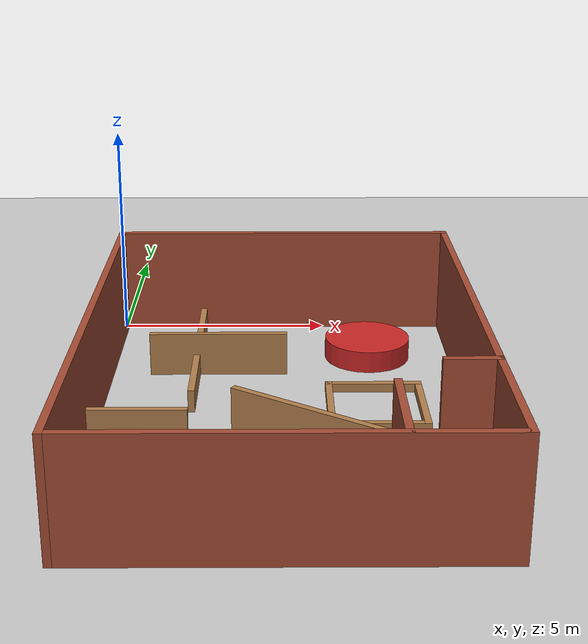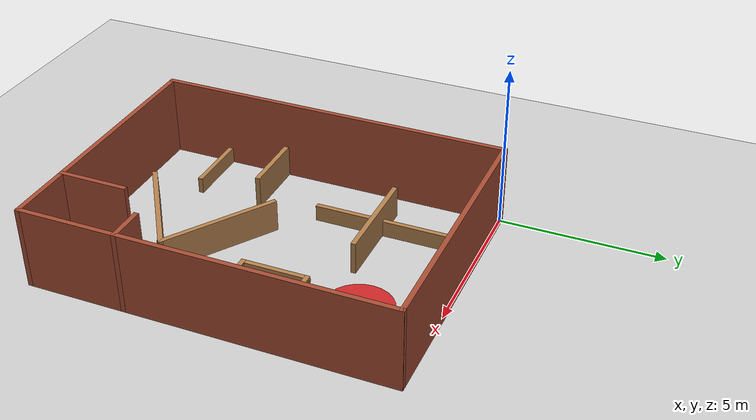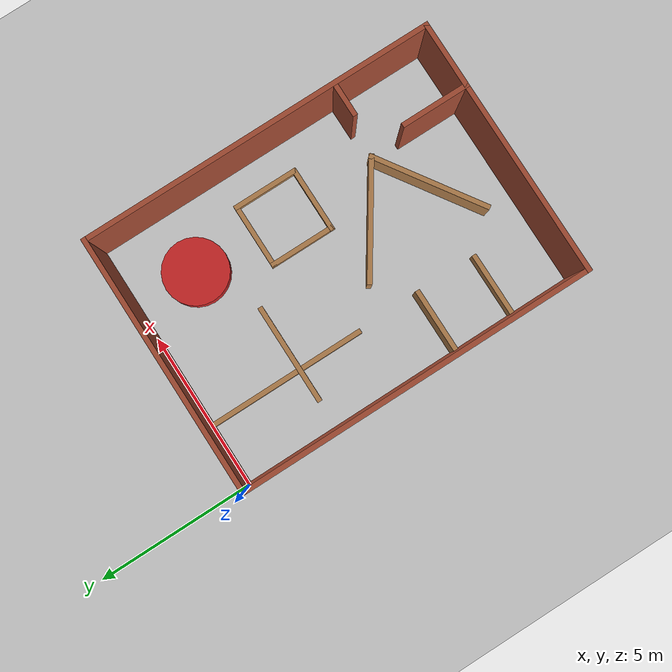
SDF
<sdf version="1.7">
 <world name="default">
  <light name="sun" type="directional">
   <pose>0 0 10 0 -0 0</pose>
   <diffuse>0.8 0.8 0.8 1</diffuse>
   <specular>0.2 0.2 0.2 1</specular>
   <attenuation>
    <range>1000</range>
    <constant>0.9</constant>
    <linear>0.01</linear>
    <quadratic>0.001</quadratic>
   </attenuation>
   <direction>-0.5 0.1 -0.9</direction>
   <spot><inner_angle>0</inner_angle><outer_angle>0</outer_angle><falloff>0</falloff></spot>
  </light>
  <model name="ground_plane">
   <static>1</static>
   <link name="link">
    <collision name="collision">
     <geometry><plane><normal>0 0 1</normal><size>100 100</size></plane></geometry>
     <surface>
      <contact><collide_bitmask>65535</collide_bitmask></contact>
      <friction><ode><mu>100</mu><mu2>50</mu2></ode></friction>
     </surface>
    </collision>
    <visual name="visual">
     <cast_shadows>0</cast_shadows>
     <geometry><plane><normal>0 0 1</normal><size>100 100</size></plane></geometry>
     <material>
      <script><uri>file://media/materials/scripts/gazebo.material</uri><name>Gazebo/Grey</name></script>
     </material>
    </visual>
   </link>
  </model>
  <gravity>0 0 -9.8</gravity>
  <magnetic_field>6e-06 2.3e-05 -4.2e-05</magnetic_field>
  <atmosphere type="adiabatic"/>
  <physics type="ode">
   <max_step_size>0.001</max_step_size>
   <real_time_factor>1</real_time_factor>
   <real_time_update_rate>1000</real_time_update_rate>
  </physics>
  <scene><ambient>0.4 0.4 0.4 1</ambient><background>0.7 0.7 0.7 1</background><shadows>1</shadows></scene>
  <spherical_coordinates>
   <surface_model>EARTH_WGS84</surface_model>
   <latitude_deg>0</latitude_deg>
   <longitude_deg>0</longitude_deg>
   <elevation>0</elevation>
   <heading_deg>0</heading_deg>
  </spherical_coordinates>
  <model name="geometry_map_0">
   <pose>4 -5.5 0 0 -0 0</pose>
   <link name="Wall_25">
    <collision name="Wall_25_Collision">
     <geometry><box><size>8.15 0.15 2.5</size></box></geometry>
     <pose>0 0 1.25 0 -0 0</pose>
    </collision>
    <visual name="Wall_25_Visual">
     <pose>0 0 1.25 0 -0 0</pose>
     <geometry><box><size>8.15 0.15 2.5</size></box></geometry>
     <material>
      <script><uri>file://media/materials/scripts/gazebo.material</uri><name>Gazebo/Bricks</name></script>
      <ambient>1 1 1 1</ambient>
     </material>
     <meta><layer>0</layer></meta>
    </visual>
    <pose>-0 5.5 0 0 -0 0</pose>
   </link>
   <link name="Wall_26">
    <collision name="Wall_26_Collision">
     <geometry><box><size>11.15 0.15 2.5</size></box></geometry>
     <pose>0 0 1.25 0 -0 0</pose>
    </collision>
    <visual name="Wall_26_Visual">
     <pose>0 0 1.25 0 -0 0</pose>
     <geometry><box><size>11.15 0.15 2.5</size></box></geometry>
     <material>
      <script><uri>file://media/materials/scripts/gazebo.material</uri><name>Gazebo/Bricks</name></script>
      <ambient>1 1 1 1</ambient>
     </material>
     <meta><layer>0</layer></meta>
    </visual>
    <pose>4 0 0 0 -0 -1.5708</pose>
   </link>
   <link name="Wall_27">
    <collision name="Wall_27_Collision">
     <geometry><box><size>8.15 0.15 2.5</size></box></geometry>
     <pose>0 0 1.25 0 -0 0</pose>
    </collision>
    <visual name="Wall_27_Visual">
     <pose>0 0 1.25 0 -0 0</pose>
     <geometry><box><size>8.15 0.15 2.5</size></box></geometry>
     <material>
      <script><uri>file://media/materials/scripts/gazebo.material</uri><name>Gazebo/Bricks</name></script>
      <ambient>1 1 1 1</ambient>
     </material>
     <meta><layer>0</layer></meta>
    </visual>
    <pose>-0 -5.5 0 0 -0 3.14159</pose>
   </link>
   <link name="Wall_28">
    <collision name="Wall_28_Collision">
     <geometry><box><size>11.15 0.15 2.5</size></box></geometry>
     <pose>0 0 1.25 0 -0 0</pose>
    </collision>
    <visual name="Wall_28_Visual">
     <pose>0 0 1.25 0 -0 0</pose>
     <geometry><box><size>11.15 0.15 2.5</size></box></geometry>
     <material>
      <script><uri>file://media/materials/scripts/gazebo.material</uri><name>Gazebo/Bricks</name></script>
      <ambient>1 1 1 1</ambient>
     </material>
     <meta><layer>0</layer></meta>
    </visual>
    <pose>-4 0 0 0 -0 1.5708</pose>
   </link>
   <link name="Wall_30">
    <collision name="Wall_30_Collision">
     <geometry><box><size>5.15 0.15 0.5</size></box></geometry>
     <pose>0 0 0.25 0 -0 0</pose>
    </collision>
    <visual name="Wall_30_Visual">
     <pose>0 0 0.25 0 -0 0</pose>
     <geometry><box><size>5.15 0.15 0.5</size></box></geometry>
     <material>
      <script><uri>file://media/materials/scripts/gazebo.material</uri><name>Gazebo/Wood</name></script>
      <ambient>1 1 1 1</ambient>
     </material>
     <meta><layer>0</layer></meta>
    </visual>
    <pose>-2 3 0 0 -0 -1.5708</pose>
   </link>
   <link name="Wall_32">
    <collision name="Wall_32_Collision">
     <geometry><box><size>3.15 0.15 1</size></box></geometry>
     <pose>0 0 0.5 0 -0 0</pose>
    </collision>
    <visual name="Wall_32_Visual">
     <pose>0 0 0.5 0 -0 0</pose>
     <geometry><box><size>3.15 0.15 1</size></box></geometry>
     <material>
      <script><uri>file://media/materials/scripts/gazebo.material</uri><name>Gazebo/Wood</name></script>
      <ambient>1 1 1 1</ambient>
     </material>
     <meta><layer>0</layer></meta>
    </visual>
    <pose>-1.5 2.5 0 0 -0 0</pose>
   </link>
   <link name="Wall_34">
    <collision name="Wall_34_Collision">
     <geometry><box><size>2.15 0.15 0.2</size></box></geometry>
     <pose>0 0 0.1 0 -0 0</pose>
    </collision>
    <visual name="Wall_34_Visual">
     <pose>0 0 0.1 0 -0 0</pose>
     <geometry><box><size>2.15 0.15 0.2</size></box></geometry>
     <material>
      <script><uri>file://media/materials/scripts/gazebo.material</uri><name>Gazebo/Wood</name></script>
      <ambient>1 1 1 1</ambient>
     </material>
     <meta><layer>0</layer></meta>
    </visual>
    <pose>2 1.5 0 0 -0 0</pose>
   </link>
   <link name="Wall_35">
    <collision name="Wall_35_Collision">
     <geometry><box><size>2.15 0.15 0.2</size></box></geometry>
     <pose>0 0 0.1 0 -0 0</pose>
    </collision>
    <visual name="Wall_35_Visual">
     <pose>0 0 0.1 0 -0 0</pose>
     <geometry><box><size>2.15 0.15 0.2</size></box></geometry>
     <material>
      <script><uri>file://media/materials/scripts/gazebo.material</uri><name>Gazebo/Wood</name></script>
      <ambient>1 1 1 1</ambient>
     </material>
     <meta><layer>0</layer></meta>
    </visual>
    <pose>3 0.5 0 0 -0 -1.5708</pose>
   </link>
   <link name="Wall_36">
    <collision name="Wall_36_Collision">
     <geometry><box><size>2.15 0.15 0.2</size></box></geometry>
     <pose>0 0 0.1 0 -0 0</pose>
    </collision>
    <visual name="Wall_36_Visual">
     <pose>0 0 0.1 0 -0 0</pose>
     <geometry><box><size>2.15 0.15 0.2</size></box></geometry>
     <material>
      <script><uri>file://media/materials/scripts/gazebo.material</uri><name>Gazebo/Wood</name></script>
      <ambient>1 1 1 1</ambient>
     </material>
     <meta><layer>0</layer></meta>
    </visual>
    <pose>2 -0.5 0 0 -0 3.14159</pose>
   </link>
   <link name="Wall_37">
    <collision name="Wall_37_Collision">
     <geometry><box><size>2.15 0.15 0.2</size></box></geometry>
     <pose>0 0 0.1 0 -0 0</pose>
    </collision>
    <visual name="Wall_37_Visual">
     <pose>0 0 0.1 0 -0 0</pose>
     <geometry><box><size>2.15 0.15 0.2</size></box></geometry>
     <material>
      <script><uri>file://media/materials/scripts/gazebo.material</uri><name>Gazebo/Wood</name></script>
      <ambient>1 1 1 1</ambient>
     </material>
     <meta><layer>0</layer></meta>
    </visual>
    <pose>1 0.5 0 0 -0 1.5708</pose>
   </link>
   <link name="Wall_39">
    <collision name="Wall_39_Collision">
     <geometry><box><size>1.15 0.15 2.5</size></box></geometry>
     <pose>0 0 1.25 0 -0 0</pose>
    </collision>
    <visual name="Wall_39_Visual">
     <pose>0 0 1.25 0 -0 0</pose>
     <geometry><box><size>1.15 0.15 2.5</size></box></geometry>
     <material>
      <script><uri>file://media/materials/scripts/gazebo.material</uri><name>Gazebo/Bricks</name></script>
      <ambient>1 1 1 1</ambient>
     </material>
     <meta><layer>0</layer></meta>
    </visual>
    <pose>3.5 -2.5 0 0 -0 0</pose>
   </link>
   <link name="Wall_41">
    <collision name="Wall_41_Collision">
     <geometry><box><size>2.15 0.15 2.5</size></box></geometry>
     <pose>0 0 1.25 0 -0 0</pose>
    </collision>
    <visual name="Wall_41_Visual">
     <pose>0 0 1.25 0 -0 0</pose>
     <geometry><box><size>2.15 0.15 2.5</size></box></geometry>
     <material>
      <script><uri>file://media/materials/scripts/gazebo.material</uri><name>Gazebo/Bricks</name></script>
      <ambient>1 1 1 1</ambient>
     </material>
     <meta><layer>0</layer></meta>
    </visual>
    <pose>2 -4.5 0 0 -0 1.5708</pose>
   </link>
   <link name="Wall_43">
    <collision name="Wall_43_Collision">
     <geometry><box><size>2.15 0.15 1</size></box></geometry>
     <pose>0 0 0.5 0 -0 0</pose>
    </collision>
    <visual name="Wall_43_Visual">
     <pose>0 0 0.5 0 -0 0</pose>
     <geometry><box><size>2.15 0.15 1</size></box></geometry>
     <material>
      <script><uri>file://media/materials/scripts/gazebo.material</uri><name>Gazebo/Wood</name></script>
      <ambient>1 1 1 1</ambient>
     </material>
     <meta><layer>0</layer></meta>
    </visual>
    <pose>-3 -1.5 0 0 -0 0</pose>
   </link>
   <link name="Wall_45">
    <collision name="Wall_45_Collision">
     <geometry><box><size>2.15 0.15 0.5</size></box></geometry>
     <pose>0 0 0.25 0 -0 0</pose>
    </collision>
    <visual name="Wall_45_Visual">
     <pose>0 0 0.25 0 -0 0</pose>
     <geometry><box><size>2.15 0.15 0.5</size></box></geometry>
     <material>
      <script><uri>file://media/materials/scripts/gazebo.material</uri><name>Gazebo/Wood</name></script>
      <ambient>1 1 1 1</ambient>
     </material>
     <meta><layer>0</layer></meta>
    </visual>
    <pose>-3 -3.5 0 0 -0 0</pose>
   </link>
   <link name="Wall_47">
    <collision name="Wall_47_Collision">
     <geometry><box><size>3.75555 0.15 1</size></box></geometry>
     <pose>0 0 0.5 0 -0 0</pose>
    </collision>
    <visual name="Wall_47_Visual">
     <pose>0 0 0.5 0 -0 0</pose>
     <geometry><box><size>3.75555 0.15 1</size></box></geometry>
     <material>
      <script><uri>file://media/materials/scripts/gazebo.material</uri><name>Gazebo/Wood</name></script>
      <ambient>1 1 1 1</ambient>
     </material>
     <meta><layer>0</layer></meta>
    </visual>
    <pose>0.5 -1.5 0 0 -0 -0.588003</pose>
   </link>
   <link name="Wall_48">
    <collision name="Wall_48_Collision">
     <geometry><box><size>3.75555 0.15 1</size></box></geometry>
     <pose>0 0 0.5 0 -0 0</pose>
    </collision>
    <visual name="Wall_48_Visual">
     <pose>0 0 0.5 0 -0 0</pose>
     <geometry><box><size>3.75555 0.15 1</size></box></geometry>
     <material>
      <script><uri>file://media/materials/scripts/gazebo.material</uri><name>Gazebo/Wood</name></script>
      <ambient>1 1 1 1</ambient>
     </material>
     <meta><layer>0</layer></meta>
    </visual>
    <pose>0.5 -3.5 0 0 -0 -2.55359</pose>
   </link>
   <static>1</static>
  </model>
  <model name="unit_cylinder">
   <link name="link">
    <inertial>
     <mass>1</mass>
     <inertia><ixx>0.145833</ixx><ixy>0</ixy><ixz>0</ixz><iyy>0.145833</iyy><iyz>0</iyz><izz>0.125</izz></inertia>
    </inertial>
    <visual name="visual">
     <geometry><cylinder><radius>1</radius><length>0.5</length></cylinder></geometry>
     <material>
      <script><name>Gazebo/Red</name><uri>file://media/materials/scripts/gazebo.material</uri></script>
      <shader type="pixel"><normal_map>__default__</normal_map></shader>
      <ambient>1 0 0 1</ambient>
      <diffuse>1 0 0 1</diffuse>
      <specular>0.1 0.1 0.1 1</specular>
      <emissive>0 0 0 1</emissive>
     </material>
    </visual>
    <collision name="collision">
     <geometry><cylinder><radius>1</radius><length>0.5</length></cylinder></geometry>
     <surface>
      <friction>
       <ode><mu>1</mu><mu2>1</mu2><fdir1>0 0 0</fdir1><slip1>0</slip1><slip2>0</slip2></ode>
       <torsional>
        <coefficient>1</coefficient>
        <patch_radius>0</patch_radius>
        <surface_radius>0</surface_radius>
        <use_patch_radius>1</use_patch_radius>
        <ode><slip>0</slip></ode>
       </torsional>
      </friction>
      <bounce><restitution_coefficient>0</restitution_coefficient><threshold>1e+06</threshold></bounce>
      <contact>
       <collide_without_contact>0</collide_without_contact>
       <collide_without_contact_bitmask>1</collide_without_contact_bitmask>
       <collide_bitmask>1</collide_bitmask>
       <ode>
        <soft_cfm>0</soft_cfm>
        <soft_erp>0.2</soft_erp>
        <kp>1e+13</kp>
        <kd>1</kd>
        <max_vel>0.01</max_vel>
        <min_depth>0</min_depth>
       </ode>
       <bullet>
        <split_impulse>1</split_impulse>
        <split_impulse_penetration_threshold>-0.01</split_impulse_penetration_threshold>
        <soft_cfm>0</soft_cfm>
        <soft_erp>0.2</soft_erp>
        <kp>1e+13</kp>
        <kd>1</kd>
       </bullet>
      </contact>
     </surface>
    </collision>
   </link>
   <static>0</static>
   <pose>6 -2 0.25 0 -0 0</pose>
  </model>
 </world>
</sdf>
